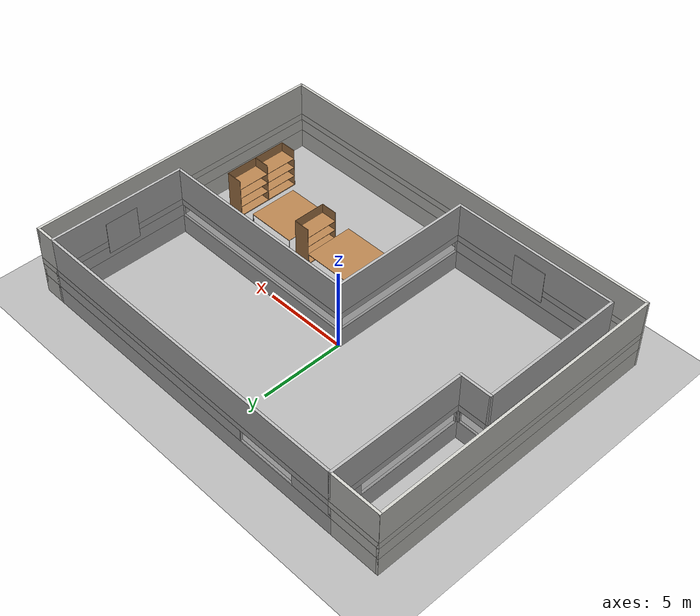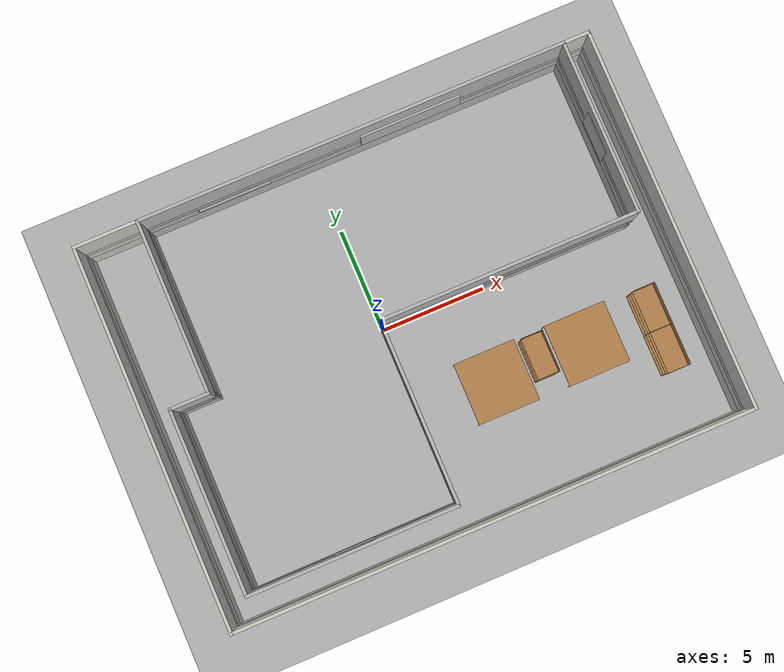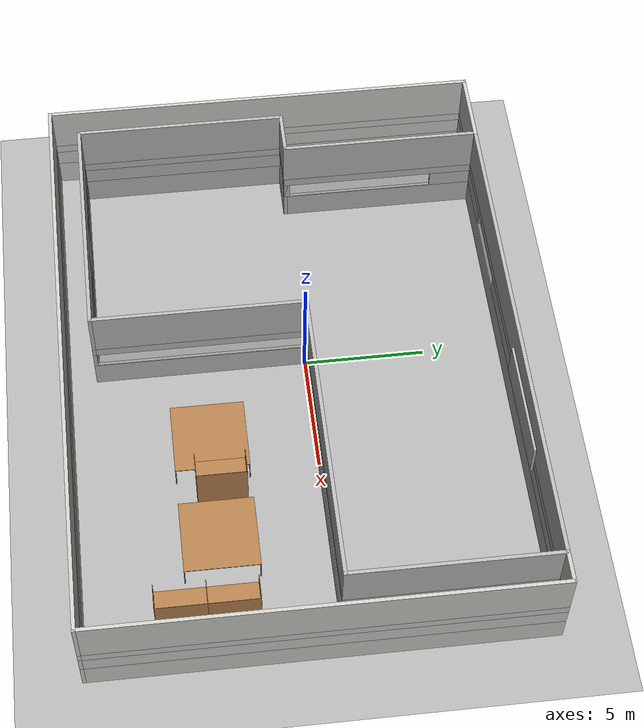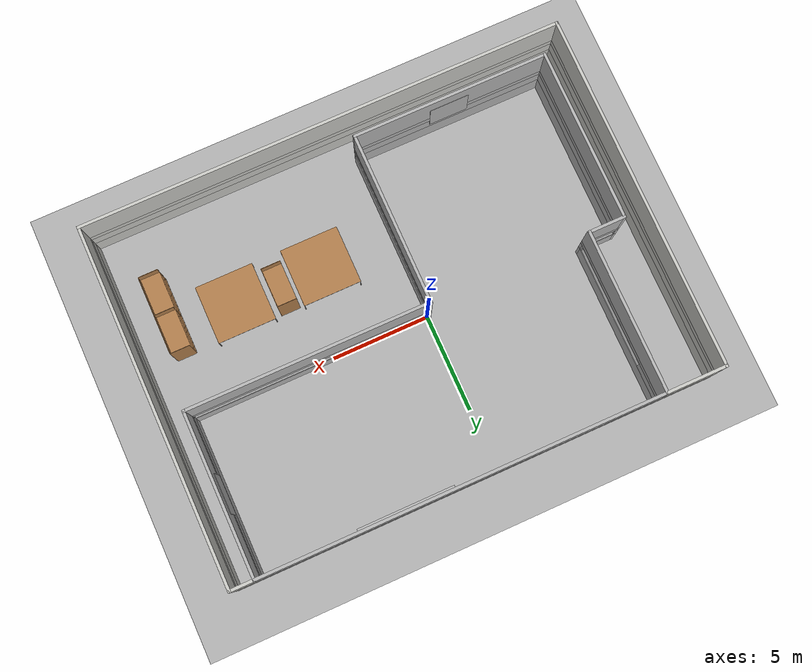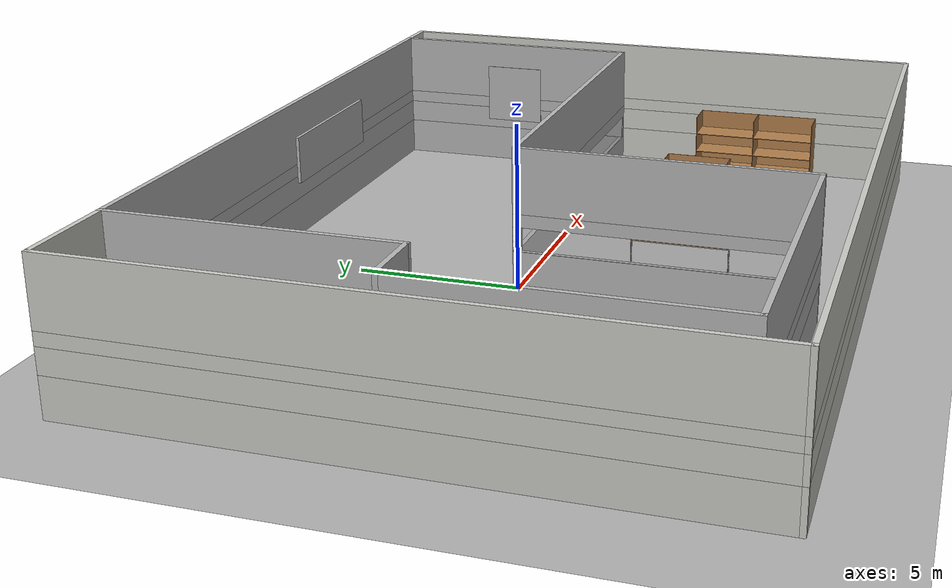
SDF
<sdf version="1.6">
 <world name="default">
  <model name="ground_plane">
   <static>1</static>
   <link name="link">
    <collision name="collision">
     <geometry><plane><normal>0 0 1</normal><size>30 25</size></plane></geometry>
     <surface><friction><ode><mu>100</mu><mu2>50</mu2></ode></friction></surface>
    </collision>
    <visual name="visual">
     <cast_shadows>0</cast_shadows>
     <geometry><plane><normal>0 0 1</normal><size>30 25</size></plane></geometry>
     <material>
      <script>
       <uri>model://ground/materials/scripts</uri>
       <uri>model://ground/materials/textures</uri>
       <name>ground</name>
      </script>
      <ambient>0.6 0.6 0.6 1</ambient>
      <diffuse>0.7 0.7 0.7 1</diffuse>
      <specular>0.2 0.2 0.2 1</specular>
     </material>
    </visual>
   </link>
  </model>
  <model name="FAV5">
   <pose>1.15 -0.8 0 0 -0 0</pose>
   <static>true</static>
   <link name="logo_1">
    <pose>11.05 4.9 1 0 -0 0</pose>
    <visual name="visual">
     <pose>0 0 1.5 0 -0 0</pose>
     <geometry><box><size>0.1 2 2</size></box></geometry>
     <material>
      <lighting>1</lighting>
      <script>
       <uri>model://logo1/materials/scripts</uri>
       <uri>model://logo1/materials/textures</uri>
       <name>logo1/logo</name>
      </script>
     </material>
    </visual>
    <collision name="collision">
     <pose>0 0 1 0 -0 0</pose>
     <geometry><box><size>0.1 2 2</size></box></geometry>
     <surface>
      <friction>
       <ode><mu>1</mu><mu2>1</mu2><fdir1>0 0 0</fdir1><slip1>0</slip1><slip2>0</slip2></ode>
       <torsional>
        <coefficient>1</coefficient>
        <patch_radius>0</patch_radius>
        <surface_radius>0</surface_radius>
        <use_patch_radius>1</use_patch_radius>
        <ode><slip>0</slip></ode>
       </torsional>
      </friction>
      <bounce><restitution_coefficient>0</restitution_coefficient><threshold>1e+06</threshold></bounce>
      <contact>
       <collide_without_contact>0</collide_without_contact>
       <collide_without_contact_bitmask>1</collide_without_contact_bitmask>
       <collide_bitmask>1</collide_bitmask>
       <ode>
        <soft_cfm>0</soft_cfm>
        <soft_erp>0.2</soft_erp>
        <kp>1e+13</kp>
        <kd>1</kd>
        <max_vel>0.01</max_vel>
        <min_depth>0</min_depth>
       </ode>
       <bullet>
        <split_impulse>1</split_impulse>
        <split_impulse_penetration_threshold>-0.01</split_impulse_penetration_threshold>
        <soft_cfm>0</soft_cfm>
        <soft_erp>0.2</soft_erp>
        <kp>1e+13</kp>
        <kd>1</kd>
       </bullet>
      </contact>
     </surface>
    </collision>
   </link>
   <static>true</static>
   <link name="logo_1_clone">
    <pose>-6.1 -7.8 1 0 -0 0</pose>
    <visual name="visual">
     <pose>0 0 1.5 0 -0 1.57</pose>
     <geometry><box><size>0.1 2 2</size></box></geometry>
     <material>
      <lighting>1</lighting>
      <script>
       <uri>model://logo1/materials/scripts</uri>
       <uri>model://logo1/materials/textures</uri>
       <name>logo1/logo</name>
      </script>
     </material>
    </visual>
    <collision name="collision">
     <pose>0 0 1.5 0 -0 1.57</pose>
     <geometry><box><size>0.1 2 2</size></box></geometry>
     <surface>
      <friction>
       <ode><mu>1</mu><mu2>1</mu2><fdir1>0 0 0</fdir1><slip1>0</slip1><slip2>0</slip2></ode>
       <torsional>
        <coefficient>1</coefficient>
        <patch_radius>0</patch_radius>
        <surface_radius>0</surface_radius>
        <use_patch_radius>1</use_patch_radius>
        <ode><slip>0</slip></ode>
       </torsional>
      </friction>
      <bounce><restitution_coefficient>0</restitution_coefficient><threshold>1e+06</threshold></bounce>
      <contact>
       <collide_without_contact>0</collide_without_contact>
       <collide_without_contact_bitmask>1</collide_without_contact_bitmask>
       <collide_bitmask>1</collide_bitmask>
       <ode>
        <soft_cfm>0</soft_cfm>
        <soft_erp>0.2</soft_erp>
        <kp>1e+13</kp>
        <kd>1</kd>
        <max_vel>0.01</max_vel>
        <min_depth>0</min_depth>
       </ode>
       <bullet>
        <split_impulse>1</split_impulse>
        <split_impulse_penetration_threshold>-0.01</split_impulse_penetration_threshold>
        <soft_cfm>0</soft_cfm>
        <soft_erp>0.2</soft_erp>
        <kp>1e+13</kp>
        <kd>1</kd>
       </bullet>
      </contact>
     </surface>
    </collision>
   </link>
   <link name="logo_2">
    <pose>3.65 8.9 1 0 -0 0</pose>
    <visual name="visual">
     <pose>0 0 1.5 0 -0 0</pose>
     <geometry><box><size>4.875 0.1 1.5</size></box></geometry>
     <material>
      <lighting>1</lighting>
      <script>
       <uri>model://logo2/materials/scripts</uri>
       <uri>model://logo2/materials/textures</uri>
       <name>logo2/logo</name>
      </script>
     </material>
    </visual>
    <collision name="collision">
     <pose>0 0 1.5 0 -0 0</pose>
     <geometry><box><size>4.875 0.1 1.5</size></box></geometry>
     <surface>
      <friction>
       <ode><mu>1</mu><mu2>1</mu2><fdir1>0 0 0</fdir1><slip1>0</slip1><slip2>0</slip2></ode>
       <torsional>
        <coefficient>1</coefficient>
        <patch_radius>0</patch_radius>
        <surface_radius>0</surface_radius>
        <use_patch_radius>1</use_patch_radius>
        <ode><slip>0</slip></ode>
       </torsional>
      </friction>
      <bounce><restitution_coefficient>0</restitution_coefficient><threshold>1e+06</threshold></bounce>
      <contact>
       <collide_without_contact>0</collide_without_contact>
       <collide_without_contact_bitmask>1</collide_without_contact_bitmask>
       <collide_bitmask>1</collide_bitmask>
       <ode>
        <soft_cfm>0</soft_cfm>
        <soft_erp>0.2</soft_erp>
        <kp>1e+13</kp>
        <kd>1</kd>
        <max_vel>0.01</max_vel>
        <min_depth>0</min_depth>
       </ode>
       <bullet>
        <split_impulse>1</split_impulse>
        <split_impulse_penetration_threshold>-0.01</split_impulse_penetration_threshold>
        <soft_cfm>0</soft_cfm>
        <soft_erp>0.2</soft_erp>
        <kp>1e+13</kp>
        <kd>1</kd>
       </bullet>
      </contact>
     </surface>
    </collision>
   </link>
   <link name="Wall_138">
    <collision name="Wall_138_Collision">
     <geometry><box><size>12.45 0.15 1.2</size></box></geometry>
     <pose>0 0 0.6 0 -0 0</pose>
    </collision>
    <visual name="Wall_138_Visual">
     <pose>0 0 0.6 0 -0 0</pose>
     <geometry><box><size>12.45 0.15 1.2</size></box></geometry>
     <material>
      <script>
       <uri>model://FAV5/materials/scripts</uri>
       <uri>model://FAV5/materials/textures</uri>
       <name>FAV5/FAV5</name>
      </script>
     </material>
     <meta><layer>0</layer></meta>
    </visual>
    <pose>4.95 0.85 0 0 -0 0</pose>
   </link>
   <link name="Wall_140">
    <collision name="Wall_140_Collision">
     <geometry><box><size>8.35 0.15 1.2</size></box></geometry>
     <pose>0 0 0.6 0 -0 0</pose>
    </collision>
    <visual name="Wall_140_Visual">
     <pose>0 0 0.6 0 -0 0</pose>
     <geometry><box><size>8.35 0.15 1.2</size></box></geometry>
     <material>
      <script>
       <uri>model://FAV5/materials/scripts</uri>
       <uri>model://FAV5/materials/textures</uri>
       <name>FAV5/FAV5</name>
      </script>
     </material>
     <meta><layer>0</layer></meta>
    </visual>
    <pose>11.1 4.95 0 0 -0 1.5708</pose>
   </link>
   <link name="Wall_141">
    <collision name="Wall_141_Collision">
     <geometry><box><size>20.55 0.15 1.2</size></box></geometry>
     <pose>0 0 0.6 0 -0 0</pose>
    </collision>
    <visual name="Wall_141_Visual">
     <pose>0 0 0.6 0 -0 0</pose>
     <geometry><box><size>20.55 0.15 1.2</size></box></geometry>
     <material>
      <script>
       <uri>model://FAV5/materials/scripts</uri>
       <uri>model://FAV5/materials/textures</uri>
       <name>FAV5/FAV5</name>
      </script>
     </material>
     <meta><layer>0</layer></meta>
    </visual>
    <pose>0.9 9.05 0 0 -0 3.14159</pose>
   </link>
   <link name="Wall_142">
    <collision name="Wall_142_Collision">
     <geometry><box><size>8.35 0.15 1.2</size></box></geometry>
     <pose>0 0 0.6 0 -0 0</pose>
    </collision>
    <visual name="Wall_142_Visual">
     <pose>0 0 0.6 0 -0 0</pose>
     <geometry><box><size>8.35 0.15 1.2</size></box></geometry>
     <material>
      <script>
       <uri>model://FAV5/materials/scripts</uri>
       <uri>model://FAV5/materials/textures</uri>
       <name>FAV5/FAV5</name>
      </script>
     </material>
     <meta><layer>0</layer></meta>
    </visual>
    <pose>-9.3 4.95 0 0 -0 -1.5708</pose>
   </link>
   <link name="Wall_143">
    <collision name="Wall_143_Collision">
     <geometry><box><size>1.95 0.15 1.2</size></box></geometry>
     <pose>0 0 0.6 0 -0 0</pose>
    </collision>
    <visual name="Wall_143_Visual">
     <pose>0 0 0.6 0 -0 0</pose>
     <geometry><box><size>1.95 0.15 1.2</size></box></geometry>
     <material>
      <script>
       <uri>model://FAV5/materials/scripts</uri>
       <uri>model://FAV5/materials/textures</uri>
       <name>FAV5/FAV5</name>
      </script>
     </material>
     <meta><layer>0</layer></meta>
    </visual>
    <pose>-10.2 0.85 0 0 -0 3.14159</pose>
   </link>
   <link name="Wall_144">
    <collision name="Wall_144_Collision">
     <geometry><box><size>8.85057 0.15 1.2</size></box></geometry>
     <pose>0 0 0.6 0 -0 0</pose>
    </collision>
    <visual name="Wall_144_Visual">
     <pose>0 0 0.6 0 -0 0</pose>
     <geometry><box><size>8.85057 0.15 1.2</size></box></geometry>
     <material>
      <script>
       <uri>model://FAV5/materials/scripts</uri>
       <uri>model://FAV5/materials/textures</uri>
       <name>FAV5/FAV5</name>
      </script>
     </material>
     <meta><layer>0</layer></meta>
    </visual>
    <pose>-11.1 -3.5 0 0 -0 -1.5708</pose>
   </link>
   <link name="Wall_145">
    <collision name="Wall_145_Collision">
     <geometry><box><size>10.05 0.15 1.2</size></box></geometry>
     <pose>0 0 0.6 0 -0 0</pose>
    </collision>
    <visual name="Wall_145_Visual">
     <pose>0 0 0.6 0 -0 0</pose>
     <geometry><box><size>10.05 0.15 1.2</size></box></geometry>
     <material>
      <script>
       <uri>model://FAV5/materials/scripts</uri>
       <uri>model://FAV5/materials/textures</uri>
       <name>FAV5/FAV5</name>
      </script>
     </material>
     <meta><layer>0</layer></meta>
    </visual>
    <pose>-6.15 -7.85 0 0 -0 0</pose>
   </link>
   <link name="Wall_146">
    <collision name="Wall_146_Collision">
     <geometry><box><size>8.85 0.15 1.2</size></box></geometry>
     <pose>0 0 0.6 0 -0 0</pose>
    </collision>
    <visual name="Wall_146_Visual">
     <pose>0 0 0.6 0 -0 0</pose>
     <geometry><box><size>8.85 0.15 1.2</size></box></geometry>
     <material>
      <script>
       <uri>model://FAV5/materials/scripts</uri>
       <uri>model://FAV5/materials/textures</uri>
       <name>FAV5/FAV5</name>
      </script>
     </material>
     <meta><layer>0</layer></meta>
    </visual>
    <pose>-1.2 -3.5 0 0 -0 1.5708</pose>
   </link>
   <link name="Wall_148">
    <collision name="Wall_148_Collision">
     <geometry><box><size>1.35 0.15 1.2</size></box></geometry>
     <pose>0 0 0.6 0 -0 0</pose>
    </collision>
    <visual name="Wall_148_Visual">
     <pose>0 0 0.6 0 -0 0</pose>
     <geometry><box><size>1.35 0.15 1.2</size></box></geometry>
     <material>
      <script><uri>file://media/materials/scripts/gazebo.material</uri><name>Gazebo/CeilingTiled</name></script>
      <ambient>1 1 1 1</ambient>
     </material>
     <meta><layer>0</layer></meta>
    </visual>
    <pose>11.7 9.05 0 0 -0 0</pose>
   </link>
   <link name="Wall_149">
    <collision name="Wall_149_Collision">
     <geometry><box><size>18.25 0.15 1.2</size></box></geometry>
     <pose>0 0 0.6 0 -0 0</pose>
    </collision>
    <visual name="Wall_149_Visual">
     <pose>0 0 0.6 0 -0 0</pose>
     <geometry><box><size>18.25 0.15 1.2</size></box></geometry>
     <material>
      <script><uri>file://media/materials/scripts/gazebo.material</uri><name>Gazebo/CeilingTiled</name></script>
      <ambient>1 1 1 1</ambient>
     </material>
     <meta><layer>0</layer></meta>
    </visual>
    <pose>12.3 0 0 0 -0 -1.5708</pose>
   </link>
   <link name="Wall_151">
    <collision name="Wall_151_Collision">
     <geometry><box><size>18.25 0.15 1.2</size></box></geometry>
     <pose>0 0 0.6 0 -0 0</pose>
    </collision>
    <visual name="Wall_151_Visual">
     <pose>0 0 0.6 0 -0 0</pose>
     <geometry><box><size>18.25 0.15 1.2</size></box></geometry>
     <material>
      <script><uri>file://media/materials/scripts/gazebo.material</uri><name>Gazebo/CeilingTiled</name></script>
      <ambient>1 1 1 1</ambient>
     </material>
     <meta><layer>0</layer></meta>
    </visual>
    <pose>-12.3 0 0 0 -0 1.5708</pose>
   </link>
   <link name="Wall_152">
    <collision name="Wall_152_Collision">
     <geometry><box><size>3.15 0.15 1.2</size></box></geometry>
     <pose>0 0 0.6 0 -0 0</pose>
    </collision>
    <visual name="Wall_152_Visual">
     <pose>0 0 0.6 0 -0 0</pose>
     <geometry><box><size>3.15 0.15 1.2</size></box></geometry>
     <material>
      <script><uri>file://media/materials/scripts/gazebo.material</uri><name>Gazebo/CeilingTiled</name></script>
      <ambient>1 1 1 1</ambient>
     </material>
     <meta><layer>0</layer></meta>
    </visual>
    <pose>-10.8 9.05 0 0 -0 0</pose>
   </link>
   <link name="Wall_154">
    <collision name="Wall_154_Collision">
     <geometry><box><size>24.75 0.15 1.2</size></box></geometry>
     <pose>0 0 0.6 0 -0 0</pose>
    </collision>
    <visual name="Wall_154_Visual">
     <pose>0 0 0.6 0 -0 0</pose>
     <geometry><box><size>24.75 0.15 1.2</size></box></geometry>
     <material>
      <script><uri>file://media/materials/scripts/gazebo.material</uri><name>Gazebo/CeilingTiled</name></script>
      <ambient>1 1 1 1</ambient>
     </material>
     <meta><layer>0</layer></meta>
    </visual>
    <pose>0 -9.05 0 0 -0 3.14159</pose>
   </link>
   <link name="Wall_157">
    <collision name="Wall_157_Collision">
     <geometry><box><size>8.35 0.15 0.75</size></box></geometry>
     <pose>0 0 0.375 0 -0 0</pose>
    </collision>
    <visual name="Wall_157_Visual">
     <pose>0 0 0.375 0 -0 0</pose>
     <geometry><box><size>8.35 0.15 0.75</size></box></geometry>
     <material>
      <script>
       <uri>model://FAV5/materials/scripts</uri>
       <uri>model://FAV5/materials/textures</uri>
       <name>FAV5/FAV5</name>
      </script>
     </material>
     <meta><layer>1</layer></meta>
    </visual>
    <pose>11.1 4.95 1.2 0 -0 1.5708</pose>
   </link>
   <link name="Wall_161">
    <collision name="Wall_161_Collision">
     <geometry><box><size>8.85 0.15 0.75</size></box></geometry>
     <pose>0 0 0.375 0 -0 0</pose>
    </collision>
    <visual name="Wall_161_Visual">
     <pose>0 0 0.375 0 -0 0</pose>
     <geometry><box><size>8.85 0.15 0.75</size></box></geometry>
     <material>
      <script>
       <uri>model://FAV5/materials/scripts</uri>
       <uri>model://FAV5/materials/textures</uri>
       <name>FAV5/FAV5</name>
      </script>
     </material>
     <meta><layer>1</layer></meta>
    </visual>
    <pose>-11.1 -3.5 1.2 0 -0 -1.5708</pose>
   </link>
   <link name="Wall_162">
    <collision name="Wall_162_Collision">
     <geometry><box><size>10.05 0.15 0.75</size></box></geometry>
     <pose>0 0 0.375 0 -0 0</pose>
    </collision>
    <visual name="Wall_162_Visual">
     <pose>0 0 0.375 0 -0 0</pose>
     <geometry><box><size>10.05 0.15 0.75</size></box></geometry>
     <material>
      <script>
       <uri>model://FAV5/materials/scripts</uri>
       <uri>model://FAV5/materials/textures</uri>
       <name>FAV5/FAV5</name>
      </script>
     </material>
     <meta><layer>1</layer></meta>
    </visual>
    <pose>-6.15 -7.85 1.2 0 -0 0</pose>
   </link>
   <link name="Wall_164">
    <collision name="Wall_164_Collision">
     <geometry><box><size>1.35 0.15 0.75</size></box></geometry>
     <pose>0 0 0.375 0 -0 0</pose>
    </collision>
    <visual name="Wall_164_Visual">
     <pose>0 0 0.375 0 -0 0</pose>
     <geometry><box><size>1.35 0.15 0.75</size></box></geometry>
     <material>
      <script><uri>file://media/materials/scripts/gazebo.material</uri><name>Gazebo/CeilingTiled</name></script>
      <ambient>1 1 1 1</ambient>
     </material>
     <meta><layer>1</layer></meta>
    </visual>
    <pose>11.7 9.05 1.2 0 -0 0</pose>
   </link>
   <link name="Wall_165">
    <collision name="Wall_165_Collision">
     <geometry><box><size>18.25 0.15 0.75</size></box></geometry>
     <pose>0 0 0.375 0 -0 0</pose>
    </collision>
    <visual name="Wall_165_Visual">
     <pose>0 0 0.375 0 -0 0</pose>
     <geometry><box><size>18.25 0.15 0.75</size></box></geometry>
     <material>
      <script><uri>file://media/materials/scripts/gazebo.material</uri><name>Gazebo/CeilingTiled</name></script>
      <ambient>1 1 1 1</ambient>
     </material>
     <meta><layer>1</layer></meta>
    </visual>
    <pose>12.3 0 1.2 0 -0 -1.5708</pose>
   </link>
   <link name="Wall_166">
    <collision name="Wall_166_Collision">
     <geometry><box><size>18.25 0.15 0.75</size></box></geometry>
     <pose>0 0 0.375 0 -0 0</pose>
    </collision>
    <visual name="Wall_166_Visual">
     <pose>0 0 0.375 0 -0 0</pose>
     <geometry><box><size>18.25 0.15 0.75</size></box></geometry>
     <material>
      <script><uri>file://media/materials/scripts/gazebo.material</uri><name>Gazebo/CeilingTiled</name></script>
      <ambient>1 1 1 1</ambient>
     </material>
     <meta><layer>1</layer></meta>
    </visual>
    <pose>-12.3 0 1.2 0 -0 1.5708</pose>
   </link>
   <link name="Wall_167">
    <collision name="Wall_167_Collision">
     <geometry><box><size>3.15 0.15 0.75</size></box></geometry>
     <pose>0 0 0.375 0 -0 0</pose>
    </collision>
    <visual name="Wall_167_Visual">
     <pose>0 0 0.375 0 -0 0</pose>
     <geometry><box><size>3.15 0.15 0.75</size></box></geometry>
     <material>
      <script><uri>file://media/materials/scripts/gazebo.material</uri><name>Gazebo/CeilingTiled</name></script>
      <ambient>1 1 1 1</ambient>
     </material>
     <meta><layer>1</layer></meta>
    </visual>
    <pose>-10.8 9.05 1.2 0 -0 0</pose>
   </link>
   <link name="Wall_168">
    <collision name="Wall_168_Collision">
     <geometry><box><size>24.75 0.15 0.75</size></box></geometry>
     <pose>0 0 0.375 0 -0 0</pose>
    </collision>
    <visual name="Wall_168_Visual">
     <pose>0 0 0.375 0 -0 0</pose>
     <geometry><box><size>24.75 0.15 0.75</size></box></geometry>
     <material>
      <script><uri>file://media/materials/scripts/gazebo.material</uri><name>Gazebo/CeilingTiled</name></script>
      <ambient>1 1 1 1</ambient>
     </material>
     <meta><layer>1</layer></meta>
    </visual>
    <pose>0 -9.05 1.2 0 -0 3.14159</pose>
   </link>
   <link name="Wall_169">
    <visual name="Wall_169_Visual">
     <pose>0 0 0.375 0 -0 0</pose>
     <geometry><box><size>6.45 0.1 0.75</size></box></geometry>
     <material name="my_material">
      <ambient>0.5 0.5 0.5 1</ambient>
      <diffuse>0.8 0.8 0.8 0.5</diffuse>
      <transparent>true</transparent>
      <opacity>0.2</opacity>
     </material>
     <meta><layer>1</layer></meta>
    </visual>
    <pose>-9.3 4.125 1.2 0 -0 1.5708</pose>
   </link>
   <gazebo reference="Wall_169">
    <material>Gazebo/Glass</material>
    <sensor name="laser_transparency">
     <transmissivity>0.85</transmissivity>
     <reflectivity>0.15</reflectivity>
    </sensor>
   </gazebo>
   <link name="Wall_170">
    <collision name="Wall_170_Collision">
     <geometry><box><size>1.9 0.15 0.75</size></box></geometry>
     <pose>0 0 0.375 0 -0 0</pose>
    </collision>
    <visual name="Wall_170_Visual">
     <pose>0 0 0.375 0 -0 0</pose>
     <geometry><box><size>1.9 0.15 0.75</size></box></geometry>
     <material>
      <script>
       <uri>model://FAV5/materials/scripts</uri>
       <uri>model://FAV5/materials/textures</uri>
       <name>FAV5/FAV5</name>
      </script>
     </material>
     <meta><layer>1</layer></meta>
    </visual>
    <pose>-9.3 8.175 1.2 0 -0 1.5708</pose>
   </link>
   <link name="Wall_172">
    <collision name="Wall_172_Collision">
     <geometry><box><size>0.25 0.15 0.75</size></box></geometry>
     <pose>0 0 0.375 0 -0 0</pose>
    </collision>
    <visual name="Wall_172_Visual">
     <pose>0 0 0.375 0 -0 0</pose>
     <geometry><box><size>0.25 0.15 0.75</size></box></geometry>
     <material>
      <script>
       <uri>model://FAV5/materials/scripts</uri>
       <uri>model://FAV5/materials/textures</uri>
       <name>FAV5/FAV5</name>
      </script>
     </material>
     <meta><layer>1</layer></meta>
    </visual>
    <pose>-9.3 0.9 1.2 0 -0 -1.5708</pose>
   </link>
   <link name="Wall_175">
    <collision name="Wall_175_Collision">
     <geometry><box><size>0.25 0.15 0.75</size></box></geometry>
     <pose>0 0 0.375 0 -0 0</pose>
    </collision>
    <visual name="Wall_175_Visual">
     <pose>0 0 0.375 0 -0 0</pose>
     <geometry><box><size>0.25 0.15 0.75</size></box></geometry>
     <material>
      <script>
       <uri>model://FAV5/materials/scripts</uri>
       <uri>model://FAV5/materials/textures</uri>
       <name>FAV5/FAV5</name>
      </script>
     </material>
     <meta><layer>1</layer></meta>
    </visual>
    <pose>-9.35 0.85 1.2 0 -0 0</pose>
   </link>
   <link name="Wall_177">
    <visual name="Wall_177_Visual">
     <pose>0 0 0.375 0 -0 0</pose>
     <geometry><box><size>1.8 0.1 0.75</size></box></geometry>
     <material name="my_material">
      <ambient>0.5 0.5 0.5 1</ambient>
      <diffuse>0.8 0.8 0.8 0.5</diffuse>
      <transparent>true</transparent>
      <opacity>0.2</opacity>
     </material>
     <meta><layer>1</layer></meta>
    </visual>
    <pose>-10.25 0.85 1.2 0 -0 0</pose>
   </link>
   <gazebo reference="Wall_177">
    <material>Gazebo/Glass</material>
    <sensor name="laser_transparency">
     <transmissivity>0.85</transmissivity>
     <reflectivity>0.15</reflectivity>
    </sensor>
   </gazebo>
   <link name="Wall_179">
    <collision name="Wall_179_Collision">
     <geometry><box><size>0.25 0.15 0.75</size></box></geometry>
     <pose>0 0 0.375 0 -0 0</pose>
    </collision>
    <visual name="Wall_179_Visual">
     <pose>0 0 0.375 0 -0 0</pose>
     <geometry><box><size>0.25 0.15 0.75</size></box></geometry>
     <material>
      <script>
       <uri>model://FAV5/materials/scripts</uri>
       <uri>model://FAV5/materials/textures</uri>
       <name>FAV5/FAV5</name>
      </script>
     </material>
     <meta><layer>1</layer></meta>
    </visual>
    <pose>-1.2 0.8 1.2 0 -0 -1.5708</pose>
   </link>
   <link name="Wall_181">
    <visual name="Wall_181_Visual">
     <pose>0 0 0.375 0 -0 0</pose>
     <geometry><box><size>8.7 0.1 0.75</size></box></geometry>
     <material name="my_material">
      <ambient>0.5 0.5 0.5 1</ambient>
      <diffuse>0.8 0.8 0.8 0.5</diffuse>
      <transparent>true</transparent>
      <opacity>0.2</opacity>
     </material>
     <meta><layer>1</layer></meta>
    </visual>
    <pose>-1.2 -3.55 1.2 0 -0 1.5708</pose>
   </link>
   <gazebo reference="Wall_181">
    <material>Gazebo/Glass</material>
    <sensor name="laser_transparency">
     <transmissivity>0.85</transmissivity>
     <reflectivity>0.15</reflectivity>
    </sensor>
   </gazebo>
   <link name="Wall_185">
    <collision name="Wall_185_Collision">
     <geometry><box><size>0.25 0.15 0.75</size></box></geometry>
     <pose>0 0 0.375 0 -0 0</pose>
    </collision>
    <visual name="Wall_185_Visual">
     <pose>0 0 0.375 0 -0 0</pose>
     <geometry><box><size>0.25 0.15 0.75</size></box></geometry>
     <material>
      <script>
       <uri>model://FAV5/materials/scripts</uri>
       <uri>model://FAV5/materials/textures</uri>
       <name>FAV5/FAV5</name>
      </script>
     </material>
     <meta><layer>1</layer></meta>
    </visual>
    <pose>-1.15 0.85 1.2 0 -0 3.14159</pose>
   </link>
   <link name="Wall_187">
    <visual name="Wall_187_Visual">
     <pose>0 0 0.375 0 -0 0</pose>
     <geometry><box><size>12.3 0.1 0.75</size></box></geometry>
     <material name="my_material">
      <ambient>0.5 0.5 0.5 1</ambient>
      <diffuse>0.8 0.8 0.8 0.5</diffuse>
      <transparent>true</transparent>
      <opacity>0.2</opacity>
     </material>
     <meta><layer>1</layer></meta>
    </visual>
    <pose>5 0.85 1.2 0 -0 0</pose>
   </link>
   <gazebo reference="Wall_187">
    <material>Gazebo/Glass</material>
    <sensor name="laser_transparency">
     <transmissivity>0.85</transmissivity>
     <reflectivity>0.15</reflectivity>
    </sensor>
   </gazebo>
   <link name="Wall_189">
    <collision name="Wall_189_Collision">
     <geometry><box><size>2.55 0.15 0.75</size></box></geometry>
     <pose>0 0 0.375 0 -0 0</pose>
    </collision>
    <visual name="Wall_189_Visual">
     <pose>0 0 0.375 0 -0 0</pose>
     <geometry><box><size>2.55 0.15 0.75</size></box></geometry>
     <material>
      <script>
       <uri>model://FAV5/materials/scripts</uri>
       <uri>model://FAV5/materials/textures</uri>
       <name>FAV5/FAV5</name>
      </script>
     </material>
     <meta><layer>1</layer></meta>
    </visual>
    <pose>-8.1 9.05 1.2 0 -0 0</pose>
   </link>
   <link name="Wall_190">
    <visual name="Wall_190_Visual">
     <pose>0 0 0.375 0 -0 0</pose>
     <geometry><box><size>3.8 0.1 0.75</size></box></geometry>
     <material name="my_material">
      <ambient>0.5 0.5 0.5 1</ambient>
      <diffuse>0.8 0.8 0.8 0.5</diffuse>
      <transparent>true</transparent>
      <opacity>0.2</opacity>
     </material>
     <meta><layer>1</layer></meta>
    </visual>
    <pose>-5.05 9.05 1.2 0 -0 0</pose>
   </link>
   <gazebo reference="Wall_190">
    <material>Gazebo/Glass</material>
    <sensor name="laser_transparency">
     <transmissivity>0.85</transmissivity>
     <reflectivity>0.15</reflectivity>
    </sensor>
   </gazebo>
   <link name="Wall_191">
    <collision name="Wall_191_Collision">
     <geometry><box><size>14.35 0.15 0.75</size></box></geometry>
     <pose>0 0 0.375 0 -0 0</pose>
    </collision>
    <visual name="Wall_191_Visual">
     <pose>0 0 0.375 0 -0 0</pose>
     <geometry><box><size>14.35 0.15 0.75</size></box></geometry>
     <material>
      <script>
       <uri>model://FAV5/materials/scripts</uri>
       <uri>model://FAV5/materials/textures</uri>
       <name>FAV5/FAV5</name>
      </script>
     </material>
     <meta><layer>1</layer></meta>
    </visual>
    <pose>3.9 9.05 1.2 0 -0 0</pose>
   </link>
   <link name="Wall_193">
    <collision name="Wall_193_Collision">
     <geometry><box><size>8.35 0.15 0.4</size></box></geometry>
     <pose>0 0 0.2 0 -0 0</pose>
    </collision>
    <visual name="Wall_193_Visual">
     <pose>0 0 0.2 0 -0 0</pose>
     <geometry><box><size>8.35 0.15 0.4</size></box></geometry>
     <material>
      <script>
       <uri>model://FAV5/materials/scripts</uri>
       <uri>model://FAV5/materials/textures</uri>
       <name>FAV5/FAV5</name>
      </script>
     </material>
     <meta><layer>2</layer></meta>
    </visual>
    <pose>11.1 4.95 1.95 0 -0 1.5708</pose>
   </link>
   <link name="Wall_194">
    <collision name="Wall_194_Collision">
     <geometry><box><size>8.85 0.15 0.4</size></box></geometry>
     <pose>0 0 0.2 0 -0 0</pose>
    </collision>
    <visual name="Wall_194_Visual">
     <pose>0 0 0.2 0 -0 0</pose>
     <geometry><box><size>8.85 0.15 0.4</size></box></geometry>
     <material>
      <script>
       <uri>model://FAV5/materials/scripts</uri>
       <uri>model://FAV5/materials/textures</uri>
       <name>FAV5/FAV5</name>
      </script>
     </material>
     <meta><layer>2</layer></meta>
    </visual>
    <pose>-11.1 -3.5 1.95 0 -0 -1.5708</pose>
   </link>
   <link name="Wall_195">
    <collision name="Wall_195_Collision">
     <geometry><box><size>10.05 0.15 0.4</size></box></geometry>
     <pose>0 0 0.2 0 -0 0</pose>
    </collision>
    <visual name="Wall_195_Visual">
     <pose>0 0 0.2 0 -0 0</pose>
     <geometry><box><size>10.05 0.15 0.4</size></box></geometry>
     <material>
      <script>
       <uri>model://FAV5/materials/scripts</uri>
       <uri>model://FAV5/materials/textures</uri>
       <name>FAV5/FAV5</name>
      </script>
     </material>
     <meta><layer>2</layer></meta>
    </visual>
    <pose>-6.15 -7.85 1.95 0 -0 0</pose>
   </link>
   <link name="Wall_196">
    <collision name="Wall_196_Collision">
     <geometry><box><size>1.35 0.15 0.4</size></box></geometry>
     <pose>0 0 0.2 0 -0 0</pose>
    </collision>
    <visual name="Wall_196_Visual">
     <pose>0 0 0.2 0 -0 0</pose>
     <geometry><box><size>1.35 0.15 0.4</size></box></geometry>
     <material>
      <script><uri>file://media/materials/scripts/gazebo.material</uri><name>Gazebo/CeilingTiled</name></script>
      <ambient>1 1 1 1</ambient>
     </material>
     <meta><layer>2</layer></meta>
    </visual>
    <pose>11.7 9.05 1.95 0 -0 0</pose>
   </link>
   <link name="Wall_197">
    <collision name="Wall_197_Collision">
     <geometry><box><size>18.25 0.15 0.4</size></box></geometry>
     <pose>0 0 0.2 0 -0 0</pose>
    </collision>
    <visual name="Wall_197_Visual">
     <pose>0 0 0.2 0 -0 0</pose>
     <geometry><box><size>18.25 0.15 0.4</size></box></geometry>
     <material>
      <script><uri>file://media/materials/scripts/gazebo.material</uri><name>Gazebo/CeilingTiled</name></script>
      <ambient>1 1 1 1</ambient>
     </material>
     <meta><layer>2</layer></meta>
    </visual>
    <pose>12.3 0 1.95 0 -0 -1.5708</pose>
   </link>
   <link name="Wall_198">
    <collision name="Wall_198_Collision">
     <geometry><box><size>18.25 0.15 0.4</size></box></geometry>
     <pose>0 0 0.2 0 -0 0</pose>
    </collision>
    <visual name="Wall_198_Visual">
     <pose>0 0 0.2 0 -0 0</pose>
     <geometry><box><size>18.25 0.15 0.4</size></box></geometry>
     <material>
      <script><uri>file://media/materials/scripts/gazebo.material</uri><name>Gazebo/CeilingTiled</name></script>
      <ambient>1 1 1 1</ambient>
     </material>
     <meta><layer>2</layer></meta>
    </visual>
    <pose>-12.3 0 1.95 0 -0 1.5708</pose>
   </link>
   <link name="Wall_199">
    <collision name="Wall_199_Collision">
     <geometry><box><size>3.15 0.15 0.4</size></box></geometry>
     <pose>0 0 0.2 0 -0 0</pose>
    </collision>
    <visual name="Wall_199_Visual">
     <pose>0 0 0.2 0 -0 0</pose>
     <geometry><box><size>3.15 0.15 0.4</size></box></geometry>
     <material>
      <script><uri>file://media/materials/scripts/gazebo.material</uri><name>Gazebo/CeilingTiled</name></script>
      <ambient>1 1 1 1</ambient>
     </material>
     <meta><layer>2</layer></meta>
    </visual>
    <pose>-10.8 9.05 1.95 0 -0 0</pose>
   </link>
   <link name="Wall_200">
    <collision name="Wall_200_Collision">
     <geometry><box><size>24.75 0.15 0.4</size></box></geometry>
     <pose>0 0 0.2 0 -0 0</pose>
    </collision>
    <visual name="Wall_200_Visual">
     <pose>0 0 0.2 0 -0 0</pose>
     <geometry><box><size>24.75 0.15 0.4</size></box></geometry>
     <material>
      <script><uri>file://media/materials/scripts/gazebo.material</uri><name>Gazebo/CeilingTiled</name></script>
      <ambient>1 1 1 1</ambient>
     </material>
     <meta><layer>2</layer></meta>
    </visual>
    <pose>0 -9.05 1.95 0 -0 3.14159</pose>
   </link>
   <link name="Wall_202">
    <collision name="Wall_202_Collision">
     <geometry><box><size>8.35 0.15 0.4</size></box></geometry>
     <pose>0 0 0.2 0 -0 0</pose>
    </collision>
    <visual name="Wall_202_Visual">
     <pose>0 0 0.2 0 -0 0</pose>
     <geometry><box><size>8.35 0.15 0.4</size></box></geometry>
     <material>
      <script>
       <uri>model://FAV5/materials/scripts</uri>
       <uri>model://FAV5/materials/textures</uri>
       <name>FAV5/FAV5</name>
      </script>
     </material>
     <meta><layer>2</layer></meta>
    </visual>
    <pose>-9.3 4.95 1.95 0 -0 1.5708</pose>
   </link>
   <link name="Wall_213">
    <collision name="Wall_213_Collision">
     <geometry><box><size>20.55 0.15 0.4</size></box></geometry>
     <pose>0 0 0.2 0 -0 0</pose>
    </collision>
    <visual name="Wall_213_Visual">
     <pose>0 0 0.2 0 -0 0</pose>
     <geometry><box><size>20.55 0.15 0.4</size></box></geometry>
     <material>
      <script>
       <uri>model://FAV5/materials/scripts</uri>
       <uri>model://FAV5/materials/textures</uri>
       <name>FAV5/FAV5</name>
      </script>
     </material>
     <meta><layer>2</layer></meta>
    </visual>
    <pose>0.9 9.05 1.95 0 -0 0</pose>
   </link>
   <link name="Wall_216">
    <collision name="Wall_216_Collision">
     <geometry><box><size>12.4504 0.15 0.4</size></box></geometry>
     <pose>0 0 0.2 0 -0 0</pose>
    </collision>
    <visual name="Wall_216_Visual">
     <pose>0 0 0.2 0 -0 0</pose>
     <geometry><box><size>12.4504 0.15 0.4</size></box></geometry>
     <material>
      <script>
       <uri>model://FAV5/materials/scripts</uri>
       <uri>model://FAV5/materials/textures</uri>
       <name>FAV5/FAV5</name>
      </script>
     </material>
     <meta><layer>2</layer></meta>
    </visual>
    <pose>4.95 0.85 1.95 0 -0 3.14159</pose>
   </link>
   <link name="Wall_218">
    <collision name="Wall_218_Collision">
     <geometry><box><size>8.85 0.15 0.4</size></box></geometry>
     <pose>0 0 0.2 0 -0 0</pose>
    </collision>
    <visual name="Wall_218_Visual">
     <pose>0 0 0.2 0 -0 0</pose>
     <geometry><box><size>8.85 0.15 0.4</size></box></geometry>
     <material>
      <script>
       <uri>model://FAV5/materials/scripts</uri>
       <uri>model://FAV5/materials/textures</uri>
       <name>FAV5/FAV5</name>
      </script>
     </material>
     <meta><layer>2</layer></meta>
    </visual>
    <pose>-1.2 -3.5 1.95 0 -0 -1.5708</pose>
   </link>
   <link name="Wall_220">
    <collision name="Wall_220_Collision">
     <geometry><box><size>1.95 0.15 0.4</size></box></geometry>
     <pose>0 0 0.2 0 -0 0</pose>
    </collision>
    <visual name="Wall_220_Visual">
     <pose>0 0 0.2 0 -0 0</pose>
     <geometry><box><size>1.95 0.15 0.4</size></box></geometry>
     <material>
      <script>
       <uri>model://FAV5/materials/scripts</uri>
       <uri>model://FAV5/materials/textures</uri>
       <name>FAV5/FAV5</name>
      </script>
     </material>
     <meta><layer>2</layer></meta>
    </visual>
    <pose>-10.2 0.85 1.95 0 -0 0</pose>
   </link>
   <link name="Wall_222">
    <collision name="Wall_222_Collision">
     <geometry><box><size>8.35 0.15 2</size></box></geometry>
     <pose>0 0 1 0 -0 0</pose>
    </collision>
    <visual name="Wall_222_Visual">
     <pose>0 0 1 0 -0 0</pose>
     <geometry><box><size>8.35 0.15 2</size></box></geometry>
     <material>
      <script>
       <uri>model://FAV5/materials/scripts</uri>
       <uri>model://FAV5/materials/textures</uri>
       <name>FAV5/FAV5</name>
      </script>
     </material>
     <meta><layer>3</layer></meta>
    </visual>
    <pose>11.1 4.95 2.35 0 -0 1.5708</pose>
   </link>
   <link name="Wall_223">
    <collision name="Wall_223_Collision">
     <geometry><box><size>8.85 0.15 2</size></box></geometry>
     <pose>0 0 1 0 -0 0</pose>
    </collision>
    <visual name="Wall_223_Visual">
     <pose>0 0 1 0 -0 0</pose>
     <geometry><box><size>8.85 0.15 2</size></box></geometry>
     <material>
      <script>
       <uri>model://FAV5/materials/scripts</uri>
       <uri>model://FAV5/materials/textures</uri>
       <name>FAV5/FAV5</name>
      </script>
     </material>
     <meta><layer>3</layer></meta>
    </visual>
    <pose>-11.1 -3.5 2.35 0 -0 -1.5708</pose>
   </link>
   <link name="Wall_224">
    <collision name="Wall_224_Collision">
     <geometry><box><size>10.05 0.15 2</size></box></geometry>
     <pose>0 0 1 0 -0 0</pose>
    </collision>
    <visual name="Wall_224_Visual">
     <pose>0 0 1 0 -0 0</pose>
     <geometry><box><size>10.05 0.15 2</size></box></geometry>
     <material>
      <script>
       <uri>model://FAV5/materials/scripts</uri>
       <uri>model://FAV5/materials/textures</uri>
       <name>FAV5/FAV5</name>
      </script>
     </material>
     <meta><layer>3</layer></meta>
    </visual>
    <pose>-6.15 -7.85 2.35 0 -0 0</pose>
   </link>
   <link name="Wall_225">
    <collision name="Wall_225_Collision">
     <geometry><box><size>1.35 0.15 2</size></box></geometry>
     <pose>0 0 1 0 -0 0</pose>
    </collision>
    <visual name="Wall_225_Visual">
     <pose>0 0 1 0 -0 0</pose>
     <geometry><box><size>1.35 0.15 2</size></box></geometry>
     <material>
      <script><uri>file://media/materials/scripts/gazebo.material</uri><name>Gazebo/CeilingTiled</name></script>
      <ambient>1 1 1 1</ambient>
     </material>
     <meta><layer>3</layer></meta>
    </visual>
    <pose>11.7 9.05 2.35 0 -0 0</pose>
   </link>
   <link name="Wall_226">
    <collision name="Wall_226_Collision">
     <geometry><box><size>18.25 0.15 2</size></box></geometry>
     <pose>0 0 1 0 -0 0</pose>
    </collision>
    <visual name="Wall_226_Visual">
     <pose>0 0 1 0 -0 0</pose>
     <geometry><box><size>18.25 0.15 2</size></box></geometry>
     <material>
      <script><uri>file://media/materials/scripts/gazebo.material</uri><name>Gazebo/CeilingTiled</name></script>
      <ambient>1 1 1 1</ambient>
     </material>
     <meta><layer>3</layer></meta>
    </visual>
    <pose>12.3 0 2.35 0 -0 -1.5708</pose>
   </link>
   <link name="Wall_227">
    <collision name="Wall_227_Collision">
     <geometry><box><size>18.25 0.15 2</size></box></geometry>
     <pose>0 0 1 0 -0 0</pose>
    </collision>
    <visual name="Wall_227_Visual">
     <pose>0 0 1 0 -0 0</pose>
     <geometry><box><size>18.25 0.15 2</size></box></geometry>
     <material>
      <script><uri>file://media/materials/scripts/gazebo.material</uri><name>Gazebo/CeilingTiled</name></script>
      <ambient>1 1 1 1</ambient>
     </material>
     <meta><layer>3</layer></meta>
    </visual>
    <pose>-12.3 0 2.35 0 -0 1.5708</pose>
   </link>
   <link name="Wall_228">
    <collision name="Wall_228_Collision">
     <geometry><box><size>3.15 0.15 2</size></box></geometry>
     <pose>0 0 1 0 -0 0</pose>
    </collision>
    <visual name="Wall_228_Visual">
     <pose>0 0 1 0 -0 0</pose>
     <geometry><box><size>3.15 0.15 2</size></box></geometry>
     <material>
      <script><uri>file://media/materials/scripts/gazebo.material</uri><name>Gazebo/CeilingTiled</name></script>
      <ambient>1 1 1 1</ambient>
     </material>
     <meta><layer>3</layer></meta>
    </visual>
    <pose>-10.8 9.05 2.35 0 -0 0</pose>
   </link>
   <link name="Wall_229">
    <collision name="Wall_229_Collision">
     <geometry><box><size>24.75 0.15 2</size></box></geometry>
     <pose>0 0 1 0 -0 0</pose>
    </collision>
    <visual name="Wall_229_Visual">
     <pose>0 0 1 0 -0 0</pose>
     <geometry><box><size>24.75 0.15 2</size></box></geometry>
     <material>
      <script><uri>file://media/materials/scripts/gazebo.material</uri><name>Gazebo/CeilingTiled</name></script>
      <ambient>1 1 1 1</ambient>
     </material>
     <meta><layer>3</layer></meta>
    </visual>
    <pose>0 -9.05 2.35 0 -0 3.14159</pose>
   </link>
   <link name="Wall_230">
    <collision name="Wall_230_Collision">
     <geometry><box><size>8.35 0.15 2</size></box></geometry>
     <pose>0 0 1 0 -0 0</pose>
    </collision>
    <visual name="Wall_230_Visual">
     <pose>0 0 1 0 -0 0</pose>
     <geometry><box><size>8.35 0.15 2</size></box></geometry>
     <material>
      <script>
       <uri>model://FAV5/materials/scripts</uri>
       <uri>model://FAV5/materials/textures</uri>
       <name>FAV5/FAV5</name>
      </script>
     </material>
     <meta><layer>3</layer></meta>
    </visual>
    <pose>-9.3 4.95 2.35 0 -0 1.5708</pose>
   </link>
   <link name="Wall_231">
    <collision name="Wall_231_Collision">
     <geometry><box><size>20.55 0.15 2</size></box></geometry>
     <pose>0 0 1 0 -0 0</pose>
    </collision>
    <visual name="Wall_231_Visual">
     <pose>0 0 1 0 -0 0</pose>
     <geometry><box><size>20.55 0.15 2</size></box></geometry>
     <material>
      <script>
       <uri>model://FAV5/materials/scripts</uri>
       <uri>model://FAV5/materials/textures</uri>
       <name>FAV5/FAV5</name>
      </script>
     </material>
     <meta><layer>3</layer></meta>
    </visual>
    <pose>0.9 9.05 2.35 0 -0 0</pose>
   </link>
   <link name="Wall_232">
    <collision name="Wall_232_Collision">
     <geometry><box><size>12.45 0.15 2</size></box></geometry>
     <pose>0 0 1 0 -0 0</pose>
    </collision>
    <visual name="Wall_232_Visual">
     <pose>0 0 1 0 -0 0</pose>
     <geometry><box><size>12.45 0.15 2</size></box></geometry>
     <material>
      <script>
       <uri>model://FAV5/materials/scripts</uri>
       <uri>model://FAV5/materials/textures</uri>
       <name>FAV5/FAV5</name>
      </script>
     </material>
     <meta><layer>3</layer></meta>
    </visual>
    <pose>4.95 0.85 2.35 0 -0 3.14159</pose>
   </link>
   <link name="Wall_233">
    <collision name="Wall_233_Collision">
     <geometry><box><size>8.85 0.15 2</size></box></geometry>
     <pose>0 0 1 0 -0 0</pose>
    </collision>
    <visual name="Wall_233_Visual">
     <pose>0 0 1 0 -0 0</pose>
     <geometry><box><size>8.85 0.15 2</size></box></geometry>
     <material>
      <script>
       <uri>model://FAV5/materials/scripts</uri>
       <uri>model://FAV5/materials/textures</uri>
       <name>FAV5/FAV5</name>
      </script>
     </material>
     <meta><layer>3</layer></meta>
    </visual>
    <pose>-1.2 -3.5 2.35 0 -0 -1.5708</pose>
   </link>
   <link name="Wall_234">
    <collision name="Wall_234_Collision">
     <geometry><box><size>1.95 0.15 2</size></box></geometry>
     <pose>0 0 1 0 -0 0</pose>
    </collision>
    <visual name="Wall_234_Visual">
     <pose>0 0 1 0 -0 0</pose>
     <geometry><box><size>1.95 0.15 2</size></box></geometry>
     <material>
      <script>
       <uri>model://FAV5/materials/scripts</uri>
       <uri>model://FAV5/materials/textures</uri>
       <name>FAV5/FAV5</name>
      </script>
     </material>
     <meta><layer>3</layer></meta>
    </visual>
    <pose>-10.2 0.85 2.35 0 -0 0</pose>
   </link>
   <static>1</static>
  </model>
  <model name="table_5">
   <static>1</static>
   <link name="link">
    <visual name="visual1">
     <pose>0 0 1 0 -0 0</pose>
     <geometry><box><size>3 3 0.03</size></box></geometry>
     <material>
      <script><uri>file://media/materials/scripts/gazebo.material</uri><name>Gazebo/Wood</name></script>
     </material>
    </visual>
    <visual name="front_left_leg">
     <pose>1.48 1.48 0.5 0 -0 0</pose>
     <geometry><cylinder><radius>0.02</radius><length>1</length></cylinder></geometry>
     <material>
      <script><uri>file://media/materials/scripts/gazebo.material</uri><name>Gazebo/Grey</name></script>
     </material>
    </visual>
    <visual name="front_right_leg">
     <pose>1.48 -1.48 0.5 0 -0 0</pose>
     <geometry><cylinder><radius>0.02</radius><length>1</length></cylinder></geometry>
     <material>
      <script><uri>file://media/materials/scripts/gazebo.material</uri><name>Gazebo/Grey</name></script>
     </material>
    </visual>
    <visual name="back_right_leg">
     <pose>-1.48 -1.48 0.5 0 -0 0</pose>
     <geometry><cylinder><radius>0.02</radius><length>1</length></cylinder></geometry>
     <material>
      <script><uri>file://media/materials/scripts/gazebo.material</uri><name>Gazebo/Grey</name></script>
     </material>
    </visual>
    <visual name="back_left_leg">
     <pose>-1.48 1.48 0.5 0 -0 0</pose>
     <geometry><cylinder><radius>0.02</radius><length>1</length></cylinder></geometry>
     <material>
      <script><uri>file://media/materials/scripts/gazebo.material</uri><name>Gazebo/Grey</name></script>
     </material>
    </visual>
   </link>
   <pose>3.8 -4.3 0 0 -0 0</pose>
  </model>
  <model name="table">
   <static>1</static>
   <link name="link">
    <visual name="visual1">
     <pose>0 0 1 0 -0 0</pose>
     <geometry><box><size>3 3 0.03</size></box></geometry>
     <material>
      <script><uri>file://media/materials/scripts/gazebo.material</uri><name>Gazebo/Wood</name></script>
     </material>
    </visual>
    <visual name="front_left_leg">
     <pose>1.48 1.48 0.5 0 -0 0</pose>
     <geometry><cylinder><radius>0.02</radius><length>1</length></cylinder></geometry>
     <material>
      <script><uri>file://media/materials/scripts/gazebo.material</uri><name>Gazebo/Grey</name></script>
     </material>
    </visual>
    <visual name="front_right_leg">
     <pose>1.48 -1.48 0.5 0 -0 0</pose>
     <geometry><cylinder><radius>0.02</radius><length>1</length></cylinder></geometry>
     <material>
      <script><uri>file://media/materials/scripts/gazebo.material</uri><name>Gazebo/Grey</name></script>
     </material>
    </visual>
    <visual name="back_right_leg">
     <pose>-1.48 -1.48 0.5 0 -0 0</pose>
     <geometry><cylinder><radius>0.02</radius><length>1</length></cylinder></geometry>
     <material>
      <script><uri>file://media/materials/scripts/gazebo.material</uri><name>Gazebo/Grey</name></script>
     </material>
    </visual>
    <visual name="back_left_leg">
     <pose>-1.48 1.48 0.5 0 -0 0</pose>
     <geometry><cylinder><radius>0.02</radius><length>1</length></cylinder></geometry>
     <material>
      <script><uri>file://media/materials/scripts/gazebo.material</uri><name>Gazebo/Grey</name></script>
     </material>
    </visual>
   </link>
   <pose>8.3 -4.3 0 0 -0 0</pose>
  </model>
  <model name="bookshelf">
   <static>1</static>
   <link name="link">
    <visual name="visual1">
     <pose>1 0.005 1.25 0 0 -1.5707</pose>
     <geometry><box><size>2 0.01 2.5</size></box></geometry>
     <material>
      <script><uri>file://media/materials/scripts/gazebo.material</uri><name>Gazebo/Wood</name></script>
     </material>
    </visual>
    <visual name="visual2">
     <pose>0.5 1 1.25 0 0 -1.5707</pose>
     <geometry><box><size>0.02 1 2.5</size></box></geometry>
     <material>
      <script><uri>file://media/materials/scripts/gazebo.material</uri><name>Gazebo/Wood</name></script>
     </material>
    </visual>
    <visual name="visual3">
     <pose>0.5 -1 1.25 0 0 -1.5707</pose>
     <geometry><box><size>0.02 1 2.5</size></box></geometry>
     <material>
      <script><uri>file://media/materials/scripts/gazebo.material</uri><name>Gazebo/Wood</name></script>
     </material>
    </visual>
    <visual name="visual4">
     <pose>0.5 0 0.03 0 0 -1.5707</pose>
     <geometry><box><size>2 1 0.06</size></box></geometry>
     <material>
      <script><uri>file://media/materials/scripts/gazebo.material</uri><name>Gazebo/Wood</name></script>
     </material>
    </visual>
    <visual name="visual5">
     <pose>0.5 0 1.9 0 0 -1.5707</pose>
     <geometry><box><size>2 1 0.02</size></box></geometry>
     <material>
      <script><uri>file://media/materials/scripts/gazebo.material</uri><name>Gazebo/Wood</name></script>
     </material>
    </visual>
    <visual name="visual6">
     <pose>0.5 0 0.66 0 0 -1.5707</pose>
     <geometry><box><size>2 1 0.02</size></box></geometry>
     <material>
      <script><uri>file://media/materials/scripts/gazebo.material</uri><name>Gazebo/Wood</name></script>
     </material>
    </visual>
    <visual name="visual7">
     <pose>0.5 0 1.27 0 0 -1.5707</pose>
     <geometry><box><size>2 1 0.02</size></box></geometry>
     <material>
      <script><uri>file://media/materials/scripts/gazebo.material</uri><name>Gazebo/Wood</name></script>
     </material>
    </visual>
   </link>
   <pose>11 -4 0 0 -0 0</pose>
  </model>
  <model name="bookshelf_0">
   <static>1</static>
   <link name="link">
    <visual name="visual1">
     <pose>1 0.005 1.25 0 0 -1.5707</pose>
     <geometry><box><size>2 0.01 2.5</size></box></geometry>
     <material>
      <script><uri>file://media/materials/scripts/gazebo.material</uri><name>Gazebo/Wood</name></script>
     </material>
    </visual>
    <visual name="visual2">
     <pose>0.5 1 1.25 0 0 -1.5707</pose>
     <geometry><box><size>0.02 1 2.5</size></box></geometry>
     <material>
      <script><uri>file://media/materials/scripts/gazebo.material</uri><name>Gazebo/Wood</name></script>
     </material>
    </visual>
    <visual name="visual3">
     <pose>0.5 -1 1.25 0 0 -1.5707</pose>
     <geometry><box><size>0.02 1 2.5</size></box></geometry>
     <material>
      <script><uri>file://media/materials/scripts/gazebo.material</uri><name>Gazebo/Wood</name></script>
     </material>
    </visual>
    <visual name="visual4">
     <pose>0.5 0 0.03 0 0 -1.5707</pose>
     <geometry><box><size>2 1 0.06</size></box></geometry>
     <material>
      <script><uri>file://media/materials/scripts/gazebo.material</uri><name>Gazebo/Wood</name></script>
     </material>
    </visual>
    <visual name="visual5">
     <pose>0.5 0 1.9 0 0 -1.5707</pose>
     <geometry><box><size>2 1 0.02</size></box></geometry>
     <material>
      <script><uri>file://media/materials/scripts/gazebo.material</uri><name>Gazebo/Wood</name></script>
     </material>
    </visual>
    <visual name="visual6">
     <pose>0.5 0 0.66 0 0 -1.5707</pose>
     <geometry><box><size>2 1 0.02</size></box></geometry>
     <material>
      <script><uri>file://media/materials/scripts/gazebo.material</uri><name>Gazebo/Wood</name></script>
     </material>
    </visual>
    <visual name="visual7">
     <pose>0.5 0 1.27 0 0 -1.5707</pose>
     <geometry><box><size>2 1 0.02</size></box></geometry>
     <material>
      <script><uri>file://media/materials/scripts/gazebo.material</uri><name>Gazebo/Wood</name></script>
     </material>
    </visual>
   </link>
   <pose>11 -6 0 0 -0 0</pose>
  </model>
  <model name="bookshelf_1">
   <static>1</static>
   <link name="link">
    <visual name="visual1">
     <pose>1 0.005 1.25 0 0 -1.5707</pose>
     <geometry><box><size>2 0.01 2.5</size></box></geometry>
     <material>
      <script><uri>file://media/materials/scripts/gazebo.material</uri><name>Gazebo/Wood</name></script>
     </material>
    </visual>
    <visual name="visual2">
     <pose>0.5 1 1.25 0 0 -1.5707</pose>
     <geometry><box><size>0.02 1 2.5</size></box></geometry>
     <material>
      <script><uri>file://media/materials/scripts/gazebo.material</uri><name>Gazebo/Wood</name></script>
     </material>
    </visual>
    <visual name="visual3">
     <pose>0.5 -1 1.25 0 0 -1.5707</pose>
     <geometry><box><size>0.02 1 2.5</size></box></geometry>
     <material>
      <script><uri>file://media/materials/scripts/gazebo.material</uri><name>Gazebo/Wood</name></script>
     </material>
    </visual>
    <visual name="visual4">
     <pose>0.5 0 0.03 0 0 -1.5707</pose>
     <geometry><box><size>2 1 0.06</size></box></geometry>
     <material>
      <script><uri>file://media/materials/scripts/gazebo.material</uri><name>Gazebo/Wood</name></script>
     </material>
    </visual>
    <visual name="visual5">
     <pose>0.5 0 1.9 0 0 -1.5707</pose>
     <geometry><box><size>2 1 0.02</size></box></geometry>
     <material>
      <script><uri>file://media/materials/scripts/gazebo.material</uri><name>Gazebo/Wood</name></script>
     </material>
    </visual>
    <visual name="visual6">
     <pose>0.5 0 0.66 0 0 -1.5707</pose>
     <geometry><box><size>2 1 0.02</size></box></geometry>
     <material>
      <script><uri>file://media/materials/scripts/gazebo.material</uri><name>Gazebo/Wood</name></script>
     </material>
    </visual>
    <visual name="visual7">
     <pose>0.5 0 1.27 0 0 -1.5707</pose>
     <geometry><box><size>2 1 0.02</size></box></geometry>
     <material>
      <script><uri>file://media/materials/scripts/gazebo.material</uri><name>Gazebo/Wood</name></script>
     </material>
    </visual>
   </link>
   <pose>5.5 -4 0 0 -0 0</pose>
  </model>
 </world>
</sdf>
